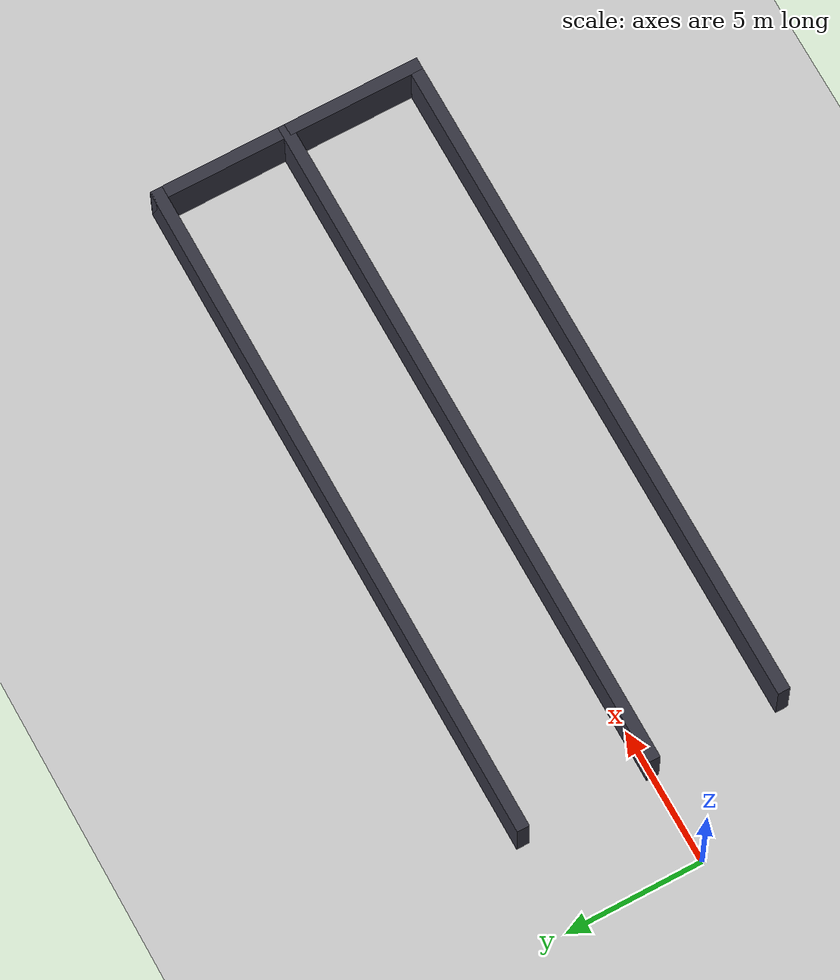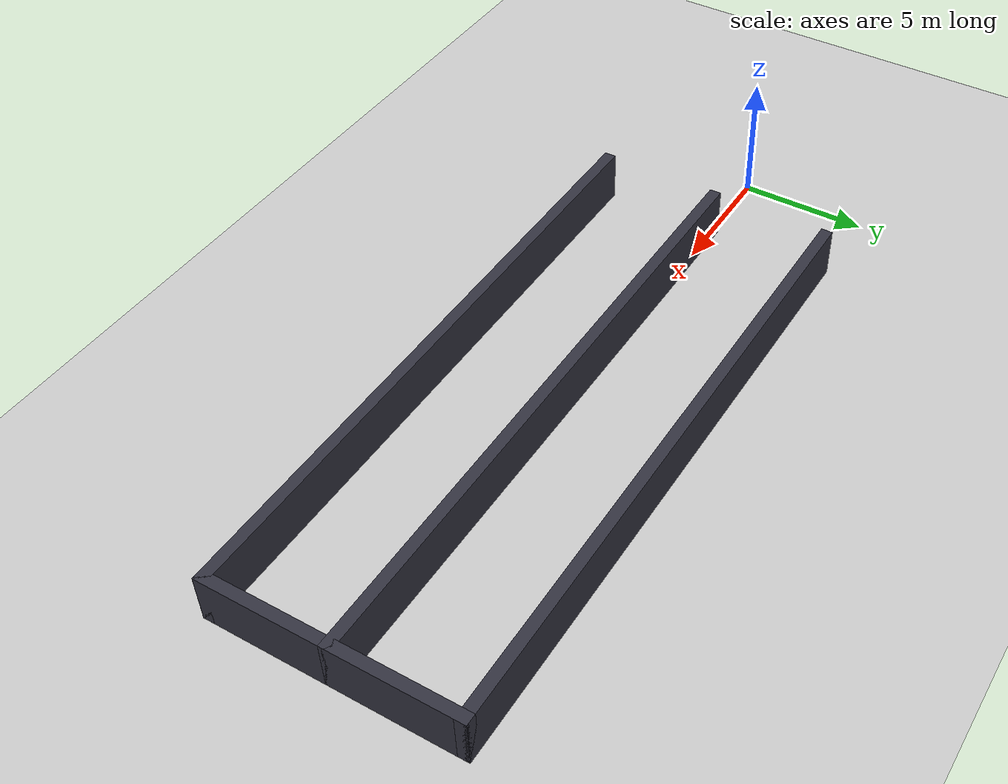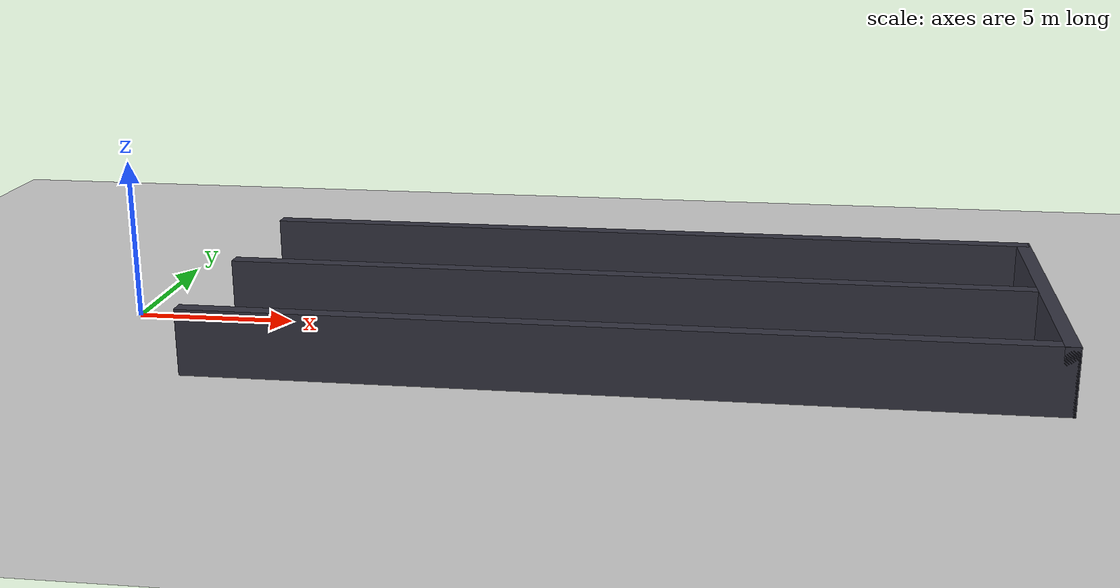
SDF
<?xml version="1.0"?>
<sdf version="1.10">
  <world name="e_wall_world">
    <model name="ground_plane">
      <static>true</static>
      <link name="link">
        <collision name="collision">
          <geometry>
            <plane>
              <normal>0 0 1</normal>
              <size>100 100</size>
            </plane>
          </geometry>
        </collision>
        <visual name="visual">
          <geometry>
            <plane>
              <normal>0 0 1</normal>
              <size>100 100</size>
            </plane>
          </geometry>
          <material>
            <ambient>0.8 0.8 0.8 1</ambient>
            <diffuse>0.8 0.8 0.8 1</diffuse>
            <specular>0.8 0.8 0.8 1</specular>
          </material>
        </visual>
      </link>
    </model>

    <light name="sun" type="directional">
      <pose>0 0 10 0 0 0</pose>
      <cast_shadows>true</cast_shadows>
      <intensity>1</intensity>
      <direction>-0.5 0.1 -0.9</direction>
      <diffuse>0.8 0.8 0.8 1</diffuse>
      <specular>0.2 0.2 0.2 1</specular>
    </light>

    <model name="e_wall">
      <static>true</static>
      <pose>28 0 1.0 0 0 0</pose>

      <link name="spine">
        <pose>0 0 0 0 0 0</pose>
        <collision name="collision">
          <geometry>
            <box>
              <size>0.45 10.0 2.0</size>
            </box>
          </geometry>
        </collision>
        <visual name="visual">
          <geometry>
            <box>
              <size>0.45 10.0 2.0</size>
            </box>
          </geometry>
          <material>
            <ambient>0.2 0.2 0.25 1</ambient>
            <diffuse>0.2 0.2 0.25 1</diffuse>
          </material>
        </visual>
      </link>

      <link name="top_bar">
        <pose>-12.275 4.775 0 0 0 0</pose>
        <collision name="collision">
          <geometry>
            <box>
              <size>25.0 0.45 2.0</size>
            </box>
          </geometry>
        </collision>
        <visual name="visual">
          <geometry>
            <box>
              <size>25.0 0.45 2.0</size>
            </box>
          </geometry>
          <material>
            <ambient>0.2 0.2 0.25 1</ambient>
            <diffuse>0.2 0.2 0.25 1</diffuse>
          </material>
        </visual>
      </link>

      <link name="middle_bar">
        <pose>-12.275 0 0 0 0 0</pose>
        <collision name="collision">
          <geometry>
            <box>
              <size>25.0 0.45 2.0</size>
            </box>
          </geometry>
        </collision>
        <visual name="visual">
          <geometry>
            <box>
              <size>25.0 0.45 2.0</size>
            </box>
          </geometry>
          <material>
            <ambient>0.2 0.2 0.25 1</ambient>
            <diffuse>0.2 0.2 0.25 1</diffuse>
          </material>
        </visual>
      </link>

      <link name="bottom_bar">
        <pose>-12.275 -4.775 0 0 0 0</pose>
        <collision name="collision">
          <geometry>
            <box>
              <size>25.0 0.45 2.0</size>
            </box>
          </geometry>
        </collision>
        <visual name="visual">
          <geometry>
            <box>
              <size>25.0 0.45 2.0</size>
            </box>
          </geometry>
          <material>
            <ambient>0.2 0.2 0.25 1</ambient>
            <diffuse>0.2 0.2 0.25 1</diffuse>
          </material>
        </visual>
      </link>
    </model>
  </world>
</sdf>
